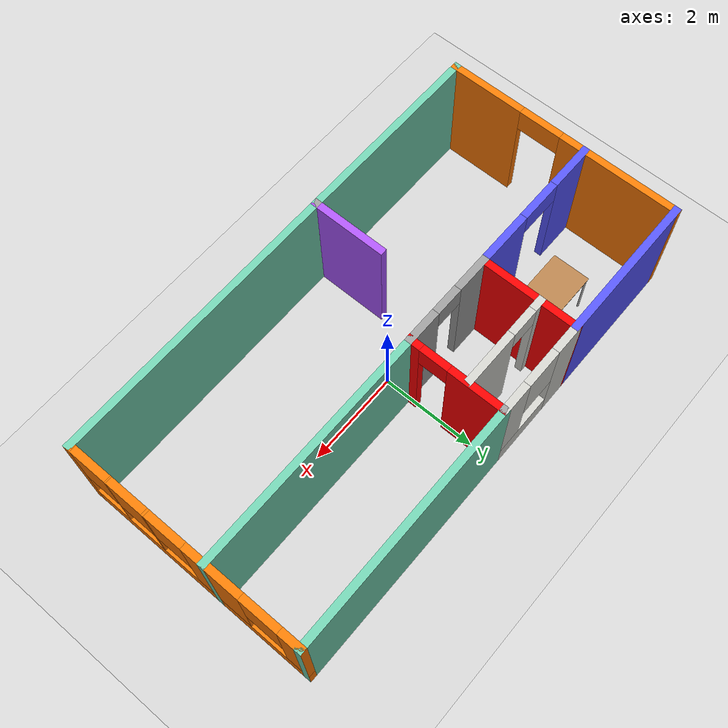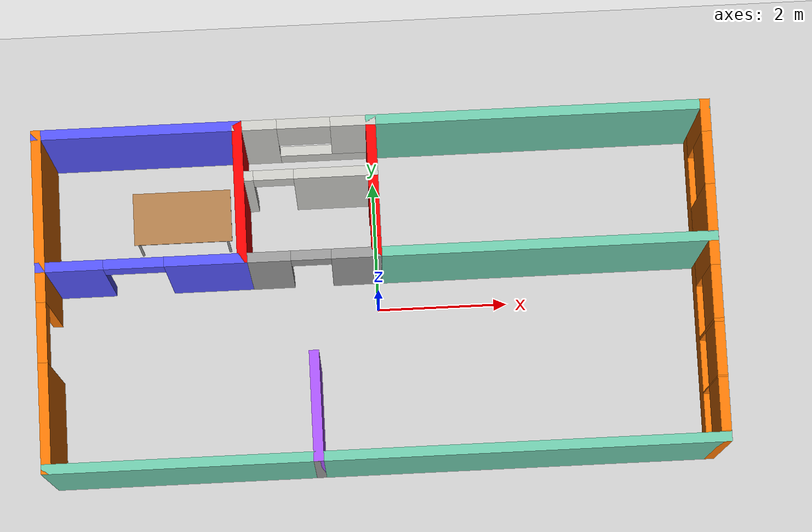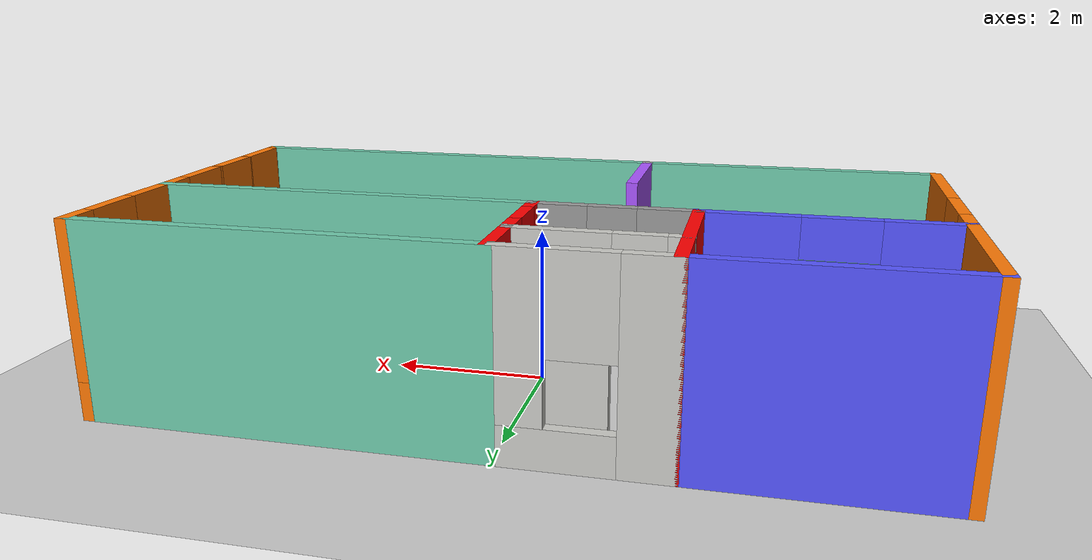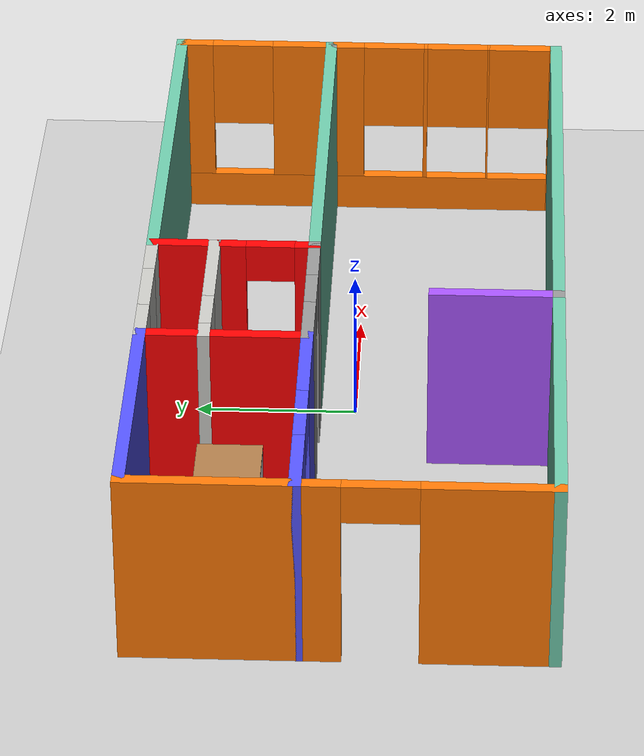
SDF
<sdf version="1.6">
 <world name="default">
  <model name="myApartment">
   <link name="Wall_11">
    <pose>-1 2.5 0 0 -0 0</pose>
    <visual name="Wall_11_Visual_0">
     <pose>-0.740811 0 1.25 0 -0 0</pose>
     <geometry><box><size>0.668379 0.15 2.5</size></box></geometry>
     <material>
      <script><uri>file://media/materials/scripts/gazebo.material</uri><name>Gazebo/CeilingTiled</name></script>
      <ambient>1 0 0 1</ambient>
     </material>
     <meta><layer>0</layer></meta>
    </visual>
    <collision name="Wall_11_Collision_0">
     <geometry><box><size>0.668379 0.15 2.5</size></box></geometry>
     <pose>-0.740811 0 1.25 0 -0 0</pose>
    </collision>
    <visual name="Wall_11_Visual_1">
     <pose>0.334189 0 0.25 0 -0 0</pose>
     <geometry><box><size>1.48162 0.15 0.5</size></box></geometry>
     <material>
      <script><uri>file://media/materials/scripts/gazebo.material</uri><name>Gazebo/CeilingTiled</name></script>
      <ambient>1 0 0 1</ambient>
     </material>
     <meta><layer>0</layer></meta>
    </visual>
    <collision name="Wall_11_Collision_1">
     <geometry><box><size>1.48162 0.15 0.5</size></box></geometry>
     <pose>0.334189 0 0.25 0 -0 0</pose>
    </collision>
    <visual name="Wall_11_Visual_2">
     <pose>0.734189 0 1.5 0 -0 0</pose>
     <geometry><box><size>0.681621 0.15 2</size></box></geometry>
     <material>
      <script><uri>file://media/materials/scripts/gazebo.material</uri><name>Gazebo/CeilingTiled</name></script>
      <ambient>1 0 0 1</ambient>
     </material>
     <meta><layer>0</layer></meta>
    </visual>
    <collision name="Wall_11_Collision_2">
     <geometry><box><size>0.681621 0.15 2</size></box></geometry>
     <pose>0.734189 0 1.5 0 -0 0</pose>
    </collision>
    <visual name="Wall_11_Visual_3">
     <pose>-0.006621 0 1.9 0 -0 0</pose>
     <geometry><box><size>0.8 0.15 1.2</size></box></geometry>
     <material>
      <script><uri>file://media/materials/scripts/gazebo.material</uri><name>Gazebo/CeilingTiled</name></script>
      <ambient>1 0 0 1</ambient>
     </material>
     <meta><layer>0</layer></meta>
    </visual>
    <collision name="Wall_11_Collision_3">
     <geometry><box><size>0.8 0.15 1.2</size></box></geometry>
     <pose>-0.006621 0 1.9 0 -0 0</pose>
    </collision>
   </link>
   <link name="Wall_12">
    <collision name="Wall_12_Collision">
     <geometry><box><size>0.15 0.15 2.5</size></box></geometry>
     <pose>0 0 1.25 0 -0 0</pose>
    </collision>
    <visual name="Wall_12_Visual">
     <pose>0 0 1.25 0 -0 0</pose>
     <geometry><box><size>0.15 0.15 2.5</size></box></geometry>
     <material>
      <script><uri>file://media/materials/scripts/gazebo.material</uri><name>Gazebo/Grey</name></script>
      <ambient>1 1 1 1</ambient>
     </material>
     <meta><layer>0</layer></meta>
    </visual>
    <pose>0 2.5 0 0 -0 0</pose>
   </link>
   <link name="Wall_16">
    <pose>-5 0 0 0 -0 1.5708</pose>
    <visual name="Wall_16_Visual_0">
     <pose>-1.74775 0 1.25 0 -0 0</pose>
     <geometry><box><size>1.65449 0.15 2.5</size></box></geometry>
     <material>
      <script><uri>file://media/materials/scripts/gazebo.material</uri><name>Gazebo/Grey</name></script>
      <ambient>0.996078 0.47451 0.0196078 1</ambient>
     </material>
     <meta><layer>0</layer></meta>
    </visual>
    <collision name="Wall_16_Collision_0">
     <geometry><box><size>1.65449 0.15 2.5</size></box></geometry>
     <pose>-1.74775 0 1.25 0 -0 0</pose>
    </collision>
    <visual name="Wall_16_Visual_1">
     <pose>1.27725 0 1.25 0 -0 0</pose>
     <geometry><box><size>2.59551 0.15 2.5</size></box></geometry>
     <material>
      <script><uri>file://media/materials/scripts/gazebo.material</uri><name>Gazebo/Grey</name></script>
      <ambient>0.996078 0.47451 0.0196078 1</ambient>
     </material>
     <meta><layer>0</layer></meta>
    </visual>
    <collision name="Wall_16_Collision_1">
     <geometry><box><size>2.59551 0.15 2.5</size></box></geometry>
     <pose>1.27725 0 1.25 0 -0 0</pose>
    </collision>
    <visual name="Wall_16_Visual_2">
     <pose>-0.470508 0 2.25 0 -0 0</pose>
     <geometry><box><size>0.9 0.15 0.5</size></box></geometry>
     <material>
      <script><uri>file://media/materials/scripts/gazebo.material</uri><name>Gazebo/Grey</name></script>
      <ambient>0.996078 0.47451 0.0196078 1</ambient>
     </material>
     <meta><layer>0</layer></meta>
    </visual>
    <collision name="Wall_16_Collision_2">
     <geometry><box><size>0.9 0.15 0.5</size></box></geometry>
     <pose>-0.470508 0 2.25 0 -0 0</pose>
    </collision>
   </link>
   <link name="Wall_17">
    <collision name="Wall_17_Collision">
     <geometry><box><size>3.15 0.15 2.5</size></box></geometry>
     <pose>0 0 1.25 0 -0 0</pose>
    </collision>
    <visual name="Wall_17_Visual">
     <pose>0 0 1.25 0 -0 0</pose>
     <geometry><box><size>3.15 0.15 2.5</size></box></geometry>
     <material>
      <script><uri>file://media/materials/scripts/gazebo.material</uri><name>Gazebo/Grey</name></script>
      <ambient>0.333333 0.333333 1 1</ambient>
     </material>
     <meta><layer>0</layer></meta>
    </visual>
    <pose>-3.5 2.5 0 0 -0 0</pose>
   </link>
   <link name="Wall_18">
    <collision name="Wall_18_Collision">
     <geometry><box><size>2.15 0.15 2.5</size></box></geometry>
     <pose>0 0 1.25 0 -0 0</pose>
    </collision>
    <visual name="Wall_18_Visual">
     <pose>0 0 1.25 0 -0 0</pose>
     <geometry><box><size>2.15 0.15 2.5</size></box></geometry>
     <material>
      <script><uri>file://media/materials/scripts/gazebo.material</uri><name>Gazebo/Grey</name></script>
      <ambient>1 0 0 1</ambient>
     </material>
     <meta><layer>0</layer></meta>
    </visual>
    <pose>-2 1.5 0 0 0 -1.5708</pose>
   </link>
   <link name="Wall_19">
    <pose>-3.5 0.5 0 0 -0 3.14159</pose>
    <visual name="Wall_19_Visual_0">
     <pose>-0.95578 0 1.25 0 -0 0</pose>
     <geometry><box><size>1.23844 0.15 2.5</size></box></geometry>
     <material>
      <script><uri>file://media/materials/scripts/gazebo.material</uri><name>Gazebo/Grey</name></script>
      <ambient>0.333333 0.333333 1 1</ambient>
     </material>
     <meta><layer>0</layer></meta>
    </visual>
    <collision name="Wall_19_Collision_0">
     <geometry><box><size>1.23844 0.15 2.5</size></box></geometry>
     <pose>-0.95578 0 1.25 0 -0 0</pose>
    </collision>
    <visual name="Wall_19_Visual_1">
     <pose>1.06922 0 1.25 0 -0 0</pose>
     <geometry><box><size>1.01156 0.15 2.5</size></box></geometry>
     <material>
      <script><uri>file://media/materials/scripts/gazebo.material</uri><name>Gazebo/Grey</name></script>
      <ambient>0.333333 0.333333 1 1</ambient>
     </material>
     <meta><layer>0</layer></meta>
    </visual>
    <collision name="Wall_19_Collision_1">
     <geometry><box><size>1.01156 0.15 2.5</size></box></geometry>
     <pose>1.06922 0 1.25 0 -0 0</pose>
    </collision>
    <visual name="Wall_19_Visual_2">
     <pose>0.113441 0 2.25 0 -0 0</pose>
     <geometry><box><size>0.9 0.15 0.5</size></box></geometry>
     <material>
      <script><uri>file://media/materials/scripts/gazebo.material</uri><name>Gazebo/Grey</name></script>
      <ambient>0.333333 0.333333 1 1</ambient>
     </material>
     <meta><layer>0</layer></meta>
    </visual>
    <collision name="Wall_19_Collision_2">
     <geometry><box><size>0.9 0.15 0.5</size></box></geometry>
     <pose>0.113441 0 2.25 0 -0 0</pose>
    </collision>
   </link>
   <link name="Wall_23">
    <pose>-1 0.5 0 0 -0 0</pose>
    <visual name="Wall_23_Visual_0">
     <pose>-0.677511 0 1.25 0 -0 0</pose>
     <geometry><box><size>0.794979 0.15 2.5</size></box></geometry>
     <material>
      <script><uri>file://media/materials/scripts/gazebo.material</uri><name>Gazebo/Grey</name></script>
      <ambient>1 1 1 1</ambient>
     </material>
     <meta><layer>0</layer></meta>
    </visual>
    <collision name="Wall_23_Collision_0">
     <geometry><box><size>0.794979 0.15 2.5</size></box></geometry>
     <pose>-0.677511 0 1.25 0 -0 0</pose>
    </collision>
    <visual name="Wall_23_Visual_1">
     <pose>0.697489 0 1.25 0 -0 0</pose>
     <geometry><box><size>0.755021 0.15 2.5</size></box></geometry>
     <material>
      <script><uri>file://media/materials/scripts/gazebo.material</uri><name>Gazebo/Grey</name></script>
      <ambient>1 1 1 1</ambient>
     </material>
     <meta><layer>0</layer></meta>
    </visual>
    <collision name="Wall_23_Collision_1">
     <geometry><box><size>0.755021 0.15 2.5</size></box></geometry>
     <pose>0.697489 0 1.25 0 -0 0</pose>
    </collision>
    <visual name="Wall_23_Visual_2">
     <pose>0.019979 0 2.25 0 -0 0</pose>
     <geometry><box><size>0.6 0.15 0.5</size></box></geometry>
     <material>
      <script><uri>file://media/materials/scripts/gazebo.material</uri><name>Gazebo/Grey</name></script>
      <ambient>1 1 1 1</ambient>
     </material>
     <meta><layer>0</layer></meta>
    </visual>
    <collision name="Wall_23_Collision_2">
     <geometry><box><size>0.6 0.15 0.5</size></box></geometry>
     <pose>0.019979 0 2.25 0 -0 0</pose>
    </collision>
   </link>
   <link name="Wall_24">
    <collision name="Wall_24_Collision">
     <geometry><box><size>0.15 0.15 2.5</size></box></geometry>
     <pose>0 0 1.25 0 -0 0</pose>
    </collision>
    <visual name="Wall_24_Visual">
     <pose>0 0 1.25 0 -0 0</pose>
     <geometry><box><size>0.15 0.15 2.5</size></box></geometry>
     <material>
      <script><uri>file://media/materials/scripts/gazebo.material</uri><name>Gazebo/Grey</name></script>
      <ambient>1 1 1 1</ambient>
     </material>
     <meta><layer>0</layer></meta>
    </visual>
    <pose>0 0.5 0 0 -0 0</pose>
   </link>
   <link name="Wall_26">
    <pose>-1 1.734 0 0 -0 0</pose>
    <visual name="Wall_26_Visual_0">
     <pose>-0.930212 0 1.25 0 -0 0</pose>
     <geometry><box><size>0.289575 0.15 2.5</size></box></geometry>
     <material>
      <script><uri>file://media/materials/scripts/gazebo.material</uri><name>Gazebo/CeilingTiled</name></script>
      <ambient>1 0 0 1</ambient>
     </material>
     <meta><layer>0</layer></meta>
    </visual>
    <collision name="Wall_26_Collision_0">
     <geometry><box><size>0.289575 0.15 2.5</size></box></geometry>
     <pose>-0.930212 0 1.25 0 -0 0</pose>
    </collision>
    <visual name="Wall_26_Visual_1">
     <pose>0.444788 0 1.25 0 -0 0</pose>
     <geometry><box><size>1.26042 0.15 2.5</size></box></geometry>
     <material>
      <script><uri>file://media/materials/scripts/gazebo.material</uri><name>Gazebo/CeilingTiled</name></script>
      <ambient>1 0 0 1</ambient>
     </material>
     <meta><layer>0</layer></meta>
    </visual>
    <collision name="Wall_26_Collision_1">
     <geometry><box><size>1.26042 0.15 2.5</size></box></geometry>
     <pose>0.444788 0 1.25 0 -0 0</pose>
    </collision>
    <visual name="Wall_26_Visual_2">
     <pose>-0.485425 0 2.25 0 -0 0</pose>
     <geometry><box><size>0.6 0.15 0.5</size></box></geometry>
     <material>
      <script><uri>file://media/materials/scripts/gazebo.material</uri><name>Gazebo/CeilingTiled</name></script>
      <ambient>1 0 0 1</ambient>
     </material>
     <meta><layer>0</layer></meta>
    </visual>
    <collision name="Wall_26_Collision_2">
     <geometry><box><size>0.6 0.15 0.5</size></box></geometry>
     <pose>-0.485425 0 2.25 0 -0 0</pose>
    </collision>
   </link>
   <link name="Wall_27">
    <collision name="Wall_27_Collision">
     <geometry><box><size>0.15 0.15 2.5</size></box></geometry>
     <pose>0 0 1.25 0 -0 0</pose>
    </collision>
    <visual name="Wall_27_Visual">
     <pose>0 0 1.25 0 -0 0</pose>
     <geometry><box><size>0.15 0.15 2.5</size></box></geometry>
     <material>
      <script><uri>file://media/materials/scripts/gazebo.material</uri><name>Gazebo/Grey</name></script>
      <ambient>1 1 1 1</ambient>
     </material>
     <meta><layer>0</layer></meta>
    </visual>
    <pose>0 1.734 0 0 -0 0</pose>
   </link>
   <link name="Wall_29">
    <collision name="Wall_29_Collision">
     <geometry><box><size>1.65 0.15 2.5</size></box></geometry>
     <pose>0 0 1.25 0 -0 0</pose>
    </collision>
    <visual name="Wall_29_Visual">
     <pose>0 0 1.25 0 -0 0</pose>
     <geometry><box><size>1.65 0.15 2.5</size></box></geometry>
     <material>
      <script><uri>file://media/materials/scripts/gazebo.material</uri><name>Gazebo/Grey</name></script>
      <ambient>0.666667 0.333333 1 1</ambient>
     </material>
     <meta><layer>0</layer></meta>
    </visual>
    <pose>-1 -1.75 0 0 0 -1.5708</pose>
   </link>
   <link name="Wall_30">
    <collision name="Wall_30_Collision">
     <geometry><box><size>0.15 0.15 2.5</size></box></geometry>
     <pose>0 0 1.25 0 -0 0</pose>
    </collision>
    <visual name="Wall_30_Visual">
     <pose>0 0 1.25 0 -0 0</pose>
     <geometry><box><size>0.15 0.15 2.5</size></box></geometry>
     <material>
      <script><uri>file://media/materials/scripts/gazebo.material</uri><name>Gazebo/Grey</name></script>
      <ambient>1 1 1 1</ambient>
     </material>
     <meta><layer>0</layer></meta>
    </visual>
    <pose>-1 -2.5 0 0 -0 0</pose>
   </link>
   <link name="Wall_4">
    <collision name="Wall_4_Collision">
     <geometry><box><size>10.15 0.15 2.5</size></box></geometry>
     <pose>0 0 1.25 0 -0 0</pose>
    </collision>
    <visual name="Wall_4_Visual">
     <pose>0 0 1.25 0 -0 0</pose>
     <geometry><box><size>10.15 0.15 2.5</size></box></geometry>
     <material>
      <script><uri>file://media/materials/scripts/gazebo.material</uri><name>Gazebo/Grey</name></script>
      <ambient>0.435294 0.796078 0.67451 1</ambient>
     </material>
     <meta><layer>0</layer></meta>
    </visual>
    <pose>0 -2.5 0 0 -0 0</pose>
   </link>
   <link name="Wall_5">
    <pose>5 0 0 0 -0 1.5708</pose>
    <visual name="Wall_5_Visual_0">
     <pose>-2.49416 0 1.25 0 -0 0</pose>
     <geometry><box><size>0.161681 0.15 2.5</size></box></geometry>
     <material>
      <script><uri>file://media/materials/scripts/gazebo.material</uri><name>Gazebo/Grey</name></script>
      <ambient>0.996078 0.47451 0.0196078 1</ambient>
     </material>
     <meta><layer>0</layer></meta>
    </visual>
    <collision name="Wall_5_Collision_0">
     <geometry><box><size>0.161681 0.15 2.5</size></box></geometry>
     <pose>-2.49416 0 1.25 0 -0 0</pose>
    </collision>
    <visual name="Wall_5_Visual_1">
     <pose>0.08084 0 0.25 0 -0 0</pose>
     <geometry><box><size>4.98832 0.15 0.5</size></box></geometry>
     <material>
      <script><uri>file://media/materials/scripts/gazebo.material</uri><name>Gazebo/Grey</name></script>
      <ambient>0.996078 0.47451 0.0196078 1</ambient>
     </material>
     <meta><layer>0</layer></meta>
    </visual>
    <collision name="Wall_5_Collision_1">
     <geometry><box><size>4.98832 0.15 0.5</size></box></geometry>
     <pose>0.08084 0 0.25 0 -0 0</pose>
    </collision>
    <visual name="Wall_5_Visual_2">
     <pose>-1.60102 0 1.5 0 -0 0</pose>
     <geometry><box><size>0.024606 0.15 2</size></box></geometry>
     <material>
      <script><uri>file://media/materials/scripts/gazebo.material</uri><name>Gazebo/Grey</name></script>
      <ambient>0.996078 0.47451 0.0196078 1</ambient>
     </material>
     <meta><layer>0</layer></meta>
    </visual>
    <collision name="Wall_5_Collision_2">
     <geometry><box><size>0.024606 0.15 2</size></box></geometry>
     <pose>-1.60102 0 1.5 0 -0 0</pose>
    </collision>
    <visual name="Wall_5_Visual_3">
     <pose>-0.76311 0 1.5 0 -0 0</pose>
     <geometry><box><size>0.051206 0.15 2</size></box></geometry>
     <material>
      <script><uri>file://media/materials/scripts/gazebo.material</uri><name>Gazebo/Grey</name></script>
      <ambient>0.996078 0.47451 0.0196078 1</ambient>
     </material>
     <meta><layer>0</layer></meta>
    </visual>
    <collision name="Wall_5_Collision_3">
     <geometry><box><size>0.051206 0.15 2</size></box></geometry>
     <pose>-0.76311 0 1.5 0 -0 0</pose>
    </collision>
    <visual name="Wall_5_Visual_4">
     <pose>0.6733 0 1.5 0 -0 0</pose>
     <geometry><box><size>1.22161 0.15 2</size></box></geometry>
     <material>
      <script><uri>file://media/materials/scripts/gazebo.material</uri><name>Gazebo/Grey</name></script>
      <ambient>0.996078 0.47451 0.0196078 1</ambient>
     </material>
     <meta><layer>0</layer></meta>
    </visual>
    <collision name="Wall_5_Collision_4">
     <geometry><box><size>1.22161 0.15 2</size></box></geometry>
     <pose>0.6733 0 1.5 0 -0 0</pose>
    </collision>
    <visual name="Wall_5_Visual_5">
     <pose>2.32955 0 1.5 0 -0 0</pose>
     <geometry><box><size>0.490892 0.15 2</size></box></geometry>
     <material>
      <script><uri>file://media/materials/scripts/gazebo.material</uri><name>Gazebo/Grey</name></script>
      <ambient>0.996078 0.47451 0.0196078 1</ambient>
     </material>
     <meta><layer>0</layer></meta>
    </visual>
    <collision name="Wall_5_Collision_5">
     <geometry><box><size>0.490892 0.15 2</size></box></geometry>
     <pose>2.32955 0 1.5 0 -0 0</pose>
    </collision>
    <visual name="Wall_5_Visual_6">
     <pose>-2.01332 0 1.9 0 -0 0</pose>
     <geometry><box><size>0.8 0.15 1.2</size></box></geometry>
     <material>
      <script><uri>file://media/materials/scripts/gazebo.material</uri><name>Gazebo/Grey</name></script>
      <ambient>0.996078 0.47451 0.0196078 1</ambient>
     </material>
     <meta><layer>0</layer></meta>
    </visual>
    <collision name="Wall_5_Collision_6">
     <geometry><box><size>0.8 0.15 1.2</size></box></geometry>
     <pose>-2.01332 0 1.9 0 -0 0</pose>
    </collision>
    <visual name="Wall_5_Visual_7">
     <pose>-1.18871 0 1.9 0 -0 0</pose>
     <geometry><box><size>0.8 0.15 1.2</size></box></geometry>
     <material>
      <script><uri>file://media/materials/scripts/gazebo.material</uri><name>Gazebo/Grey</name></script>
      <ambient>0.996078 0.47451 0.0196078 1</ambient>
     </material>
     <meta><layer>0</layer></meta>
    </visual>
    <collision name="Wall_5_Collision_7">
     <geometry><box><size>0.8 0.15 1.2</size></box></geometry>
     <pose>-1.18871 0 1.9 0 -0 0</pose>
    </collision>
    <visual name="Wall_5_Visual_8">
     <pose>-0.337507 0 1.9 0 -0 0</pose>
     <geometry><box><size>0.8 0.15 1.2</size></box></geometry>
     <material>
      <script><uri>file://media/materials/scripts/gazebo.material</uri><name>Gazebo/Grey</name></script>
      <ambient>0.996078 0.47451 0.0196078 1</ambient>
     </material>
     <meta><layer>0</layer></meta>
    </visual>
    <collision name="Wall_5_Collision_8">
     <geometry><box><size>0.8 0.15 1.2</size></box></geometry>
     <pose>-0.337507 0 1.9 0 -0 0</pose>
    </collision>
    <visual name="Wall_5_Visual_9">
     <pose>1.68411 0 1.9 0 -0 0</pose>
     <geometry><box><size>0.8 0.15 1.2</size></box></geometry>
     <material>
      <script><uri>file://media/materials/scripts/gazebo.material</uri><name>Gazebo/Grey</name></script>
      <ambient>0.996078 0.47451 0.0196078 1</ambient>
     </material>
     <meta><layer>0</layer></meta>
    </visual>
    <collision name="Wall_5_Collision_9">
     <geometry><box><size>0.8 0.15 1.2</size></box></geometry>
     <pose>1.68411 0 1.9 0 -0 0</pose>
    </collision>
   </link>
   <link name="Wall_6">
    <collision name="Wall_6_Collision">
     <geometry><box><size>5.15 0.15 2.5</size></box></geometry>
     <pose>0 0 1.25 0 -0 0</pose>
    </collision>
    <visual name="Wall_6_Visual">
     <pose>0 0 1.25 0 -0 0</pose>
     <geometry><box><size>5.15 0.15 2.5</size></box></geometry>
     <material>
      <script><uri>file://media/materials/scripts/gazebo.material</uri><name>Gazebo/Grey</name></script>
      <ambient>0.435294 0.796078 0.67451 1</ambient>
     </material>
     <meta><layer>0</layer></meta>
    </visual>
    <pose>2.5 2.5 0 0 -0 3.14159</pose>
   </link>
   <link name="Wall_7">
    <pose>0 1.5 0 0 0 -1.5708</pose>
    <visual name="Wall_7_Visual_0">
     <pose>-0.460352 0 1.25 0 -0 0</pose>
     <geometry><box><size>1.2293 0.15 2.5</size></box></geometry>
     <material>
      <script><uri>file://media/materials/scripts/gazebo.material</uri><name>Gazebo/Grey</name></script>
      <ambient>1 0 0 1</ambient>
     </material>
     <meta><layer>0</layer></meta>
    </visual>
    <collision name="Wall_7_Collision_0">
     <geometry><box><size>1.2293 0.15 2.5</size></box></geometry>
     <pose>-0.460352 0 1.25 0 -0 0</pose>
    </collision>
    <visual name="Wall_7_Visual_1">
     <pose>0.914648 0 1.25 0 -0 0</pose>
     <geometry><box><size>0.320703 0.15 2.5</size></box></geometry>
     <material>
      <script><uri>file://media/materials/scripts/gazebo.material</uri><name>Gazebo/Grey</name></script>
      <ambient>1 0 0 1</ambient>
     </material>
     <meta><layer>0</layer></meta>
    </visual>
    <collision name="Wall_7_Collision_1">
     <geometry><box><size>0.320703 0.15 2.5</size></box></geometry>
     <pose>0.914648 0 1.25 0 -0 0</pose>
    </collision>
    <visual name="Wall_7_Visual_2">
     <pose>0.454297 0 2.25 0 -0 0</pose>
     <geometry><box><size>0.6 0.15 0.5</size></box></geometry>
     <material>
      <script><uri>file://media/materials/scripts/gazebo.material</uri><name>Gazebo/Grey</name></script>
      <ambient>1 0 0 1</ambient>
     </material>
     <meta><layer>0</layer></meta>
    </visual>
    <collision name="Wall_7_Collision_2">
     <geometry><box><size>0.6 0.15 0.5</size></box></geometry>
     <pose>0.454297 0 2.25 0 -0 0</pose>
    </collision>
   </link>
   <link name="Wall_8">
    <collision name="Wall_8_Collision">
     <geometry><box><size>5.15 0.15 2.5</size></box></geometry>
     <pose>0 0 1.25 0 -0 0</pose>
    </collision>
    <visual name="Wall_8_Visual">
     <pose>0 0 1.25 0 -0 0</pose>
     <geometry><box><size>5.15 0.15 2.5</size></box></geometry>
     <material>
      <script><uri>file://media/materials/scripts/gazebo.material</uri><name>Gazebo/Grey</name></script>
      <ambient>0.435294 0.796078 0.67451 1</ambient>
     </material>
     <meta><layer>0</layer></meta>
    </visual>
    <pose>2.5 0.5 0 0 -0 0</pose>
   </link>
   <link name="Wall_9">
    <collision name="Wall_9_Collision">
     <geometry><box><size>0.15 0.15 2.5</size></box></geometry>
     <pose>0 0 1.25 0 -0 0</pose>
    </collision>
    <visual name="Wall_9_Visual">
     <pose>0 0 1.25 0 -0 0</pose>
     <geometry><box><size>0.15 0.15 2.5</size></box></geometry>
     <material>
      <script><uri>file://media/materials/scripts/gazebo.material</uri><name>Gazebo/Grey</name></script>
      <ambient>1 1 1 1</ambient>
     </material>
     <meta><layer>0</layer></meta>
    </visual>
    <pose>5 0.5 0 0 -0 0</pose>
   </link>
   <static>1</static>
  </model>
  <model name="table">
   <static>1</static>
   <link name="link">
    <collision name="surface">
     <pose>0 0 1 0 -0 0</pose>
     <geometry><box><size>1.5 0.8 0.03</size></box></geometry>
     <surface><friction><ode><mu>0.6</mu><mu2>0.6</mu2></ode></friction></surface>
    </collision>
    <visual name="visual1">
     <pose>0 0 1 0 -0 0</pose>
     <geometry><box><size>1.5 0.8 0.03</size></box></geometry>
     <material>
      <script><uri>file://media/materials/scripts/gazebo.material</uri><name>Gazebo/Wood</name></script>
     </material>
    </visual>
    <collision name="front_left_leg">
     <pose>0.68 0.38 0.5 0 -0 0</pose>
     <geometry><cylinder><radius>0.02</radius><length>1</length></cylinder></geometry>
    </collision>
    <visual name="front_left_leg">
     <pose>0.68 0.38 0.5 0 -0 0</pose>
     <geometry><cylinder><radius>0.02</radius><length>1</length></cylinder></geometry>
     <material>
      <script><uri>file://media/materials/scripts/gazebo.material</uri><name>Gazebo/Grey</name></script>
     </material>
    </visual>
    <collision name="front_right_leg">
     <pose>0.68 -0.38 0.5 0 -0 0</pose>
     <geometry><cylinder><radius>0.02</radius><length>1</length></cylinder></geometry>
    </collision>
    <visual name="front_right_leg">
     <pose>0.68 -0.38 0.5 0 -0 0</pose>
     <geometry><cylinder><radius>0.02</radius><length>1</length></cylinder></geometry>
     <material>
      <script><uri>file://media/materials/scripts/gazebo.material</uri><name>Gazebo/Grey</name></script>
     </material>
    </visual>
    <collision name="back_right_leg">
     <pose>-0.68 -0.38 0.5 0 -0 0</pose>
     <geometry><cylinder><radius>0.02</radius><length>1</length></cylinder></geometry>
    </collision>
    <visual name="back_right_leg">
     <pose>-0.68 -0.38 0.5 0 -0 0</pose>
     <geometry><cylinder><radius>0.02</radius><length>1</length></cylinder></geometry>
     <material>
      <script><uri>file://media/materials/scripts/gazebo.material</uri><name>Gazebo/Grey</name></script>
     </material>
    </visual>
    <collision name="back_left_leg">
     <pose>-0.68 0.38 0.5 0 -0 0</pose>
     <geometry><cylinder><radius>0.02</radius><length>1</length></cylinder></geometry>
    </collision>
    <visual name="back_left_leg">
     <pose>-0.68 0.38 0.5 0 -0 0</pose>
     <geometry><cylinder><radius>0.02</radius><length>1</length></cylinder></geometry>
     <material>
      <script><uri>file://media/materials/scripts/gazebo.material</uri><name>Gazebo/Grey</name></script>
     </material>
    </visual>
   </link>
   <pose>-2.94432 1.43198 0 0 -0 0</pose>
  </model>
  <model name="ground_plane">
   <static>1</static>
   <link name="link">
    <collision name="collision">
     <geometry><plane><normal>0 0 1</normal><size>100 100</size></plane></geometry>
     <surface><friction><ode><mu>100</mu><mu2>50</mu2></ode></friction></surface>
    </collision>
    <visual name="visual">
     <cast_shadows>0</cast_shadows>
     <geometry><plane><normal>0 0 1</normal><size>100 100</size></plane></geometry>
     <material>
      <script><uri>file://media/materials/scripts/gazebo.material</uri><name>Gazebo/Grey</name></script>
     </material>
    </visual>
   </link>
   <pose>3.90103 8.06114 0 0 -0 0</pose>
  </model>
 </world>
</sdf>
